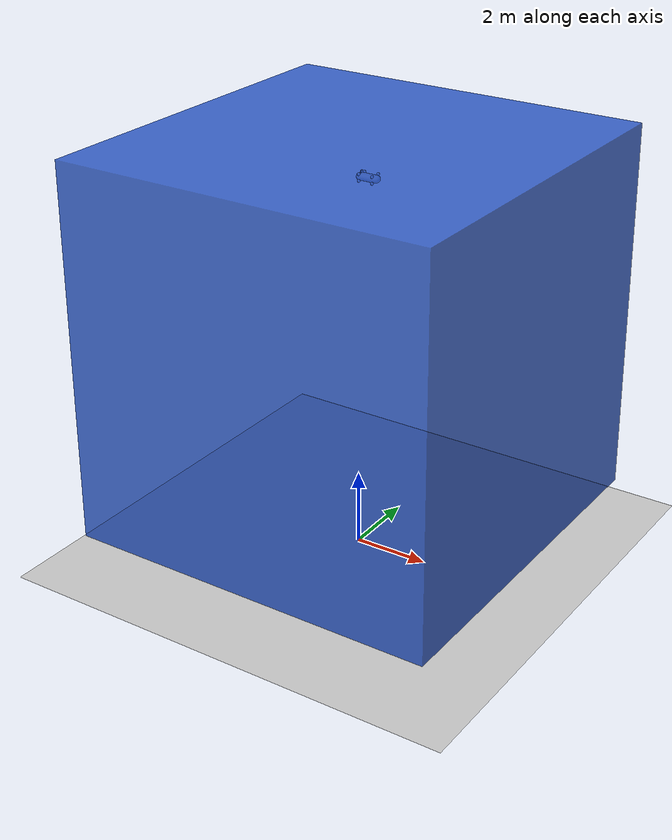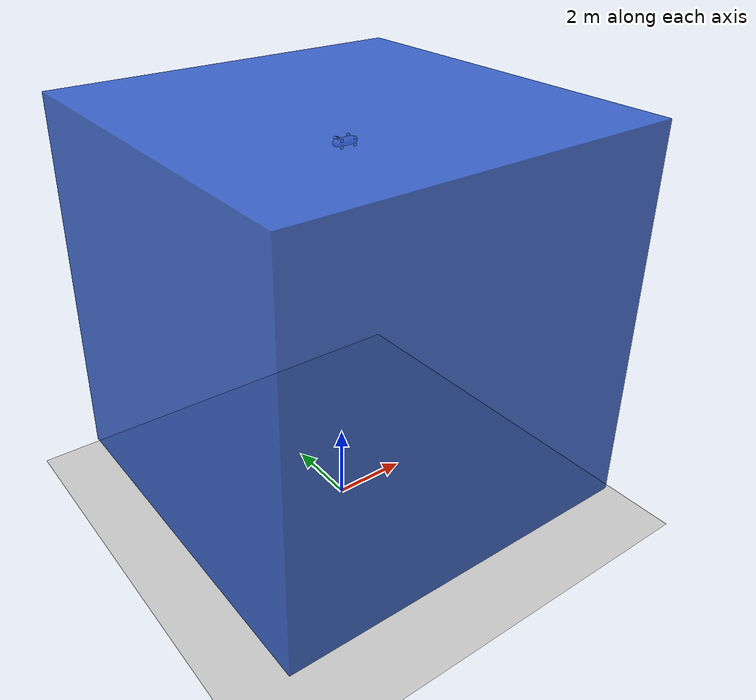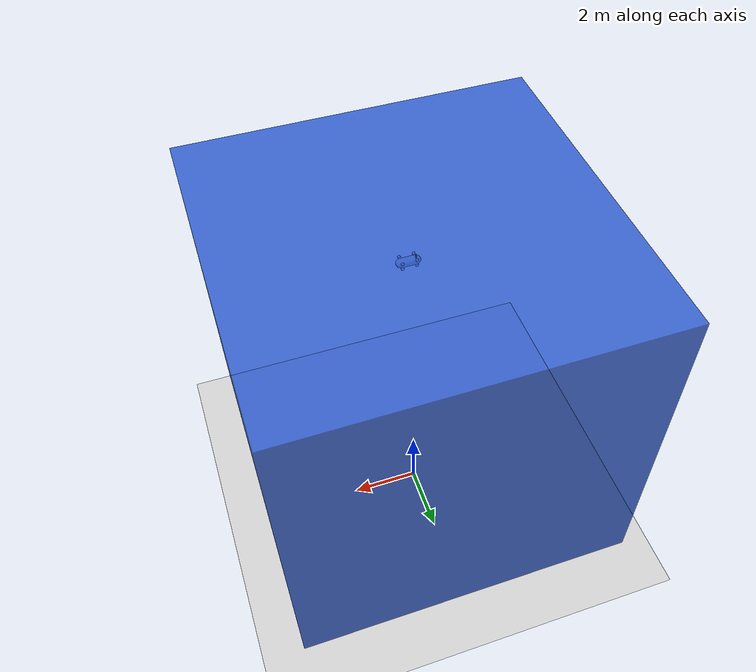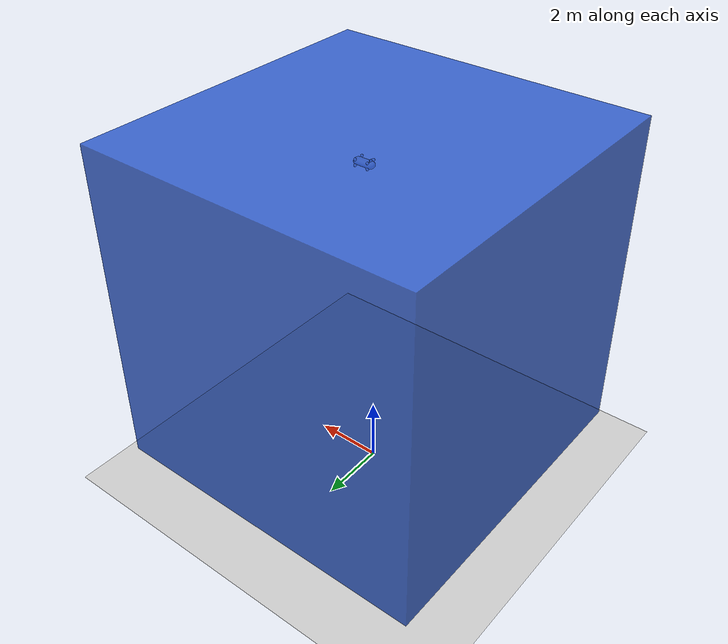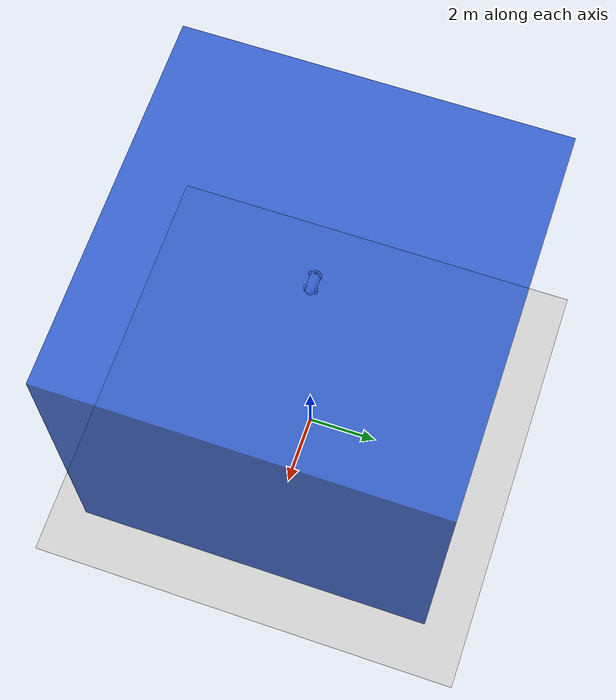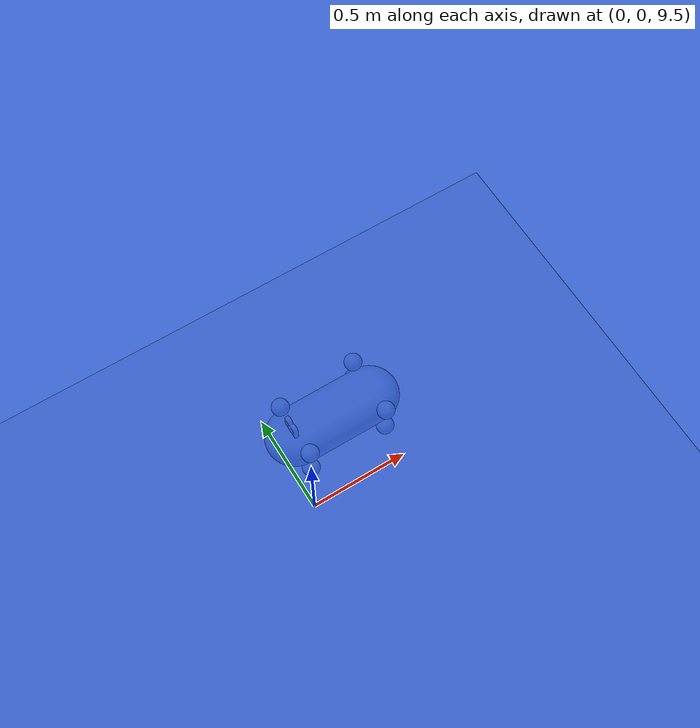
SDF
<?xml version="1.0" ?>
<sdf version="1.11">
<world name="underwater_test">
<gravity>0 0 -0.2</gravity>
  <model name="test_v5">
  <plugin name="apply_force_plugin" filename="libapply_force_plugin.so">
  </plugin>
          <pose>0 0 10 0 0 0</pose>
    <link name="base_link">
      <inertial>
        <mass>0.0001</mass>
        <inertia>
          <ixx>1e-09</ixx>
          <ixy>0</ixy>
          <ixz>0</ixz>
          <iyy>1e-09</iyy>
          <iyz>0</iyz>
          <izz>1e-09</izz>
        </inertia>
      </inertial>
    </link>
    <link name="component1_1">
      <inertial>

        <mass>192.82168520553324</mass>
        <inertia>
          <ixx>1.2144872137607212</ixx>
          <ixy>0.0</ixy>
          <ixz>-4.440892098500626e-16</ixz>
          <iyy>5.681135836101559</iyy>
          <iyz>0.0</iyz>
          <izz>6.17597261369616</izz>
        </inertia>
      </inertial>
      <visual name="component1_1__body1_visual">
        <geometry>
          <mesh>
            <scale>0.01 0.01 0.01</scale>
            <uri>meshes/component1_1/body1_visual.obj</uri>
          </mesh>
        </geometry>
      </visual>
      <collision name="component1_1__body1_collision">
        <pose relative_to="__model__">0.19 0.1335 0.0825 -0.0 -1.5707963267948966 0</pose>
        <geometry>
          <box>
            <size>0.165 0.267 0.647</size>
          </box>
        </geometry>
      </collision>
    </link>
    <link name="component2_1">
      <inertial>
        <pose>0.0 0.25 0.165 0.0 -0.0 0.0</pose>
        <mass>2.278701871403796</mass>
        <inertia>
          <ixx>0.0014583691976984559</ixx>
          <ixy>-7.730704965069889e-19</ixy>
          <ixz>-7.730704965069889e-19</ixz>
          <iyy>0.001458369197698428</iyy>
          <iyz>0.0</iyz>
          <izz>0.0014583691976984559</izz>
        </inertia>
      </inertial>
      <visual name="component2_1__body1_visual">
        <geometry>
          <mesh>
            <scale>0.01 0.01 0.01</scale>
            <uri>meshes/component2_1/body1_visual.obj</uri>
          </mesh>
        </geometry>
      </visual>
      <collision name="component2_1__body1_collision">
        <pose relative_to="__model__">0.0 0.25 0.165 -0.0 -1.5707963267948966 0</pose>
        <geometry>
          <box>
            <size>0.08 0.08 0.08</size>
          </box>
        </geometry>
      </collision>
    </link>
    <link name="component3_1">
      <inertial>
        <pose>0.38 0.27 0.1649999999999997 0.0 -0.0 0.0</pose>
        <mass>2.278701871403796</mass>
        <inertia>
          <ixx>0.001458369197698428</ixx>
          <ixy>0.0</ixy>
          <ixz>-2.7755575615628914e-17</ixz>
          <iyy>0.0014583691976984836</iyy>
          <iyz>1.3877787807814457e-17</iyz>
          <izz>0.0014583691976984836</izz>
        </inertia>
      </inertial>
      <visual name="component3_1__body1_visual">
        <geometry>
          <mesh>
            <scale>0.01 0.01 0.01</scale>
            <uri>meshes/component3_1/body1_visual.obj</uri>
          </mesh>
        </geometry>
      </visual>
      <collision name="component3_1__body1_collision">
        <pose relative_to="__model__">0.38 0.27 0.1649999999999997 -0.0 -1.5707963267948966 0</pose>
        <geometry>
          <box>
            <size>0.08 0.08 0.08</size>
          </box>
        </geometry>
      </collision>
    </link>
    <link name="component4_1">
      <inertial>
        <pose>0.38 0.0 0.165 0.0 -0.0 0.0</pose>
        <mass>2.278701871403796</mass>
        <inertia>
          <ixx>0.001458369197698428</ixx>
          <ixy>-7.730704965069889e-19</ixy>
          <ixz>2.7755575615628914e-17</ixz>
          <iyy>0.001458369197698428</iyy>
          <iyz>-7.730704965069889e-19</iyz>
          <izz>0.0014583691976984836</izz>
        </inertia>
      </inertial>
      <visual name="component4_1__body1_visual">
        <geometry>
          <mesh>
            <scale>0.01 0.01 0.01</scale>
            <uri>meshes/component4_1/body1_visual.obj</uri>
          </mesh>
        </geometry>
      </visual>
      <collision name="component4_1__body1_collision">
        <pose relative_to="__model__">0.38 0.0 0.165 -0.0 -1.5707963267948966 0</pose>
        <geometry>
          <box>
            <size>0.08 0.08 0.08</size>
          </box>
        </geometry>
      </collision>
    </link>
    <link name="component5_1">
      <inertial>
        <pose>0.0 0.0 0.165 0.0 -0.0 0.0</pose>
        <mass>2.1044481988846826</mass>
        <inertia>
          <ixx>0.0013468468472861983</ixx>
          <ixy>0.0</ixy>
          <ixz>-7.139533408917486e-19</ixz>
          <iyy>0.0013468468472861983</iyy>
          <iyz>-7.139533408917486e-19</iyz>
          <izz>0.0013468468472861972</izz>
        </inertia>
      </inertial>
      <visual name="component5_1__body1_visual">
        <geometry>
          <mesh>
            <scale>0.01 0.01 0.01</scale>
            <uri>meshes/component5_1/body1_visual.obj</uri>
          </mesh>
        </geometry>
      </visual>
      <collision name="component5_1__body1_collision">
        <pose relative_to="__model__">0.0 0.0 0.165 -0.0 -1.5707963267948966 0</pose>
        <geometry>
          <box>
            <size>0.08 0.08 0.08</size>
          </box>
        </geometry>
      </collision>
    </link>
    <link name="component6_1">
      <inertial>
        <mass>2.278701871403796</mass>
        <inertia>
          <ixx>0.00145836919769843</ixx>
          <ixy>0.0</ixy>
          <ixz>0.0</ixz>
          <iyy>0.00145836919769843</iyy>
          <iyz>0.0</iyz>
          <izz>0.00145836919769843</izz>
        </inertia>
      </inertial>
      <visual name="component6_1__body1_visual">
        <geometry>
          <mesh>
            <scale>0.01 0.01 0.01</scale>
            <uri>meshes/component6_1/body1_visual.obj</uri>
          </mesh>
        </geometry>
      </visual>
      <collision name="component6_1__body1_collision">
        <pose relative_to="__model__">0.0 0.0 0.0 -0.0 -1.5707963267948966 0</pose>
        <geometry>
          <box>
            <size>0.08 0.08 0.08</size>
          </box>
        </geometry>
      </collision>
    </link>
    <link name="component7_1">
      <inertial>
        <pose>0.38 0.0 0.0 0.0 -0.0 0.0</pose>
        <mass>2.1044481988846826</mass>
        <inertia>
          <ixx>0.0013468468472861972</ixx>
          <ixy>-7.139533408917486e-19</ixy>
          <ixz>-7.139533408917486e-19</ixz>
          <iyy>0.0013468468472861983</iyy>
          <iyz>0.0</iyz>
          <izz>0.0013468468472861983</izz>
        </inertia>
      </inertial>
      <visual name="component7_1__body1_visual">
        <geometry>
          <mesh>
            <scale>0.01 0.01 0.01</scale>
            <uri>meshes/component7_1/body1_visual.obj</uri>
          </mesh>
        </geometry>
      </visual>
      <collision name="component7_1__body1_collision">
        <pose relative_to="__model__">0.38 0.0 0.0 -0.0 -1.5707963267948966 0</pose>
        <geometry>
          <box>
            <size>0.08 0.08 0.08</size>
          </box>
        </geometry>
      </collision>
    </link>
    <link name="component8_1">
      <inertial>
        <pose>0.0 0.25 0.0 0.0 -0.0 0.0</pose>
        <mass>2.278701871403796</mass>
        <inertia>
          <ixx>0.0014583691976984559</ixx>
          <ixy>-7.730704965069889e-19</ixy>
          <ixz>0.0</ixz>
          <iyy>0.00145836919769843</iyy>
          <iyz>-7.730704965069889e-19</iyz>
          <izz>0.0014583691976984559</izz>
        </inertia>
      </inertial>
      <visual name="component8_1__body1_visual">
        <geometry>
          <mesh>
            <scale>0.01 0.01 0.01</scale>
            <uri>meshes/component8_1/body1_visual.obj</uri>
          </mesh>
        </geometry>
      </visual>
      <collision name="component8_1__body1_collision">
        <pose relative_to="__model__">0.0 0.25 0.0 -0.0 -1.5707963267948966 0</pose>
        <geometry>
          <box>
            <size>0.08 0.08 0.08</size>
          </box>
        </geometry>
      </collision>
    </link>
    <link name="component9_1">
      <inertial>
        <pose>0.38 0.27 0.0 0.0 -0.0 0.0</pose>
        <mass>2.278701871403796</mass>
        <inertia>
          <ixx>0.0014583691976984003</ixx>
          <ixy>0.0</ixy>
          <ixz>-7.730704965069889e-19</ixz>
          <iyy>0.0014583691976984836</iyy>
          <iyz>-7.730704965069889e-19</iyz>
          <izz>0.0014583691976984836</izz>
        </inertia>
      </inertial>
      <visual name="component9_1__body1_visual">
        <geometry>
          <mesh>
            <scale>0.01 0.01 0.01</scale>
            <uri>meshes/component9_1/body1_visual.obj</uri>
          </mesh>
        </geometry>
      </visual>
      <collision name="component9_1__body1_collision">
        <pose relative_to="__model__">0.38 0.27 0.0 -0.0 -1.5707963267948966 0</pose>
        <geometry>
          <box>
            <size>0.08 0.08 0.08</size>
          </box>
        </geometry>
      </collision>
    </link>
    <link name="component10_1">
      <inertial>
        <pose>-0.010428677657031083 0.1335000019892508 0.1984934291309221 0.0 -0.0 0.0</pose>
        <mass>0.9291492635185803</mass>
        <inertia>
          <ixx>0.0009051102801991145</ixx>
          <ixy>-6.078037378953738e-16</ixy>
          <ixz>6.400392222388404e-07</ixz>
          <iyy>0.0003762723521830852</iyy>
          <iyz>7.979727989493313e-17</iyz>
          <izz>0.0005963367620533781</izz>
        </inertia>
      </inertial>
      <visual name="component10_1__body1_visual">
        <geometry>
          <mesh>
            <scale>0.01 0.01 0.01</scale>
            <uri>meshes/component10_1/body1_visual.obj</uri>
          </mesh>
        </geometry>
      </visual>
      <collision name="component10_1__body1_collision">
        <pose relative_to="__model__">-0.0125 0.133500001989305 0.20087500262074173 -0.0 -1.5707963267948966 0</pose>
        <geometry>
          <box>
            <size>0.07175000032410025 0.08700000129640102 0.025</size>
          </box>
        </geometry>
      </collision>
    </link>
    <joint name="base_link_joint" type="fixed">
      <parent>base_link</parent>
      <child>component8_1</child>
      <axis/>
    </joint>
  </model>
    <include>
      <uri>ground</uri>
    </include>
        <include>
      <uri>water</uri>
    </include>
    </world>
</sdf>

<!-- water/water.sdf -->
<sdf version="1.4">
  <model name="water">
  <static>true</static>

    <link name="water_link">

      <visual name="visual1">
        <geometry>
          <box>
            <size>10 10 10</size>
          </box>
        </geometry>
        <material>
          <ambient>0.1 0.3 0.8 0.8</ambient>
          <diffuse>0.1 0.3 0.8 0.8</diffuse>
          <specular>0.1 0.1 0.1 0.1</specular>
        </material>
      </visual>
    </link>

    <pose>0 0 6 0 0 0</pose>
  </model>
</sdf>
